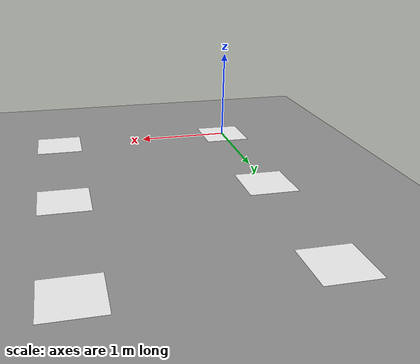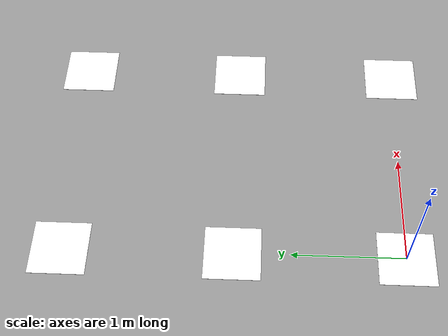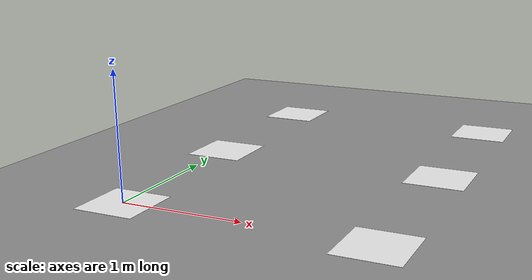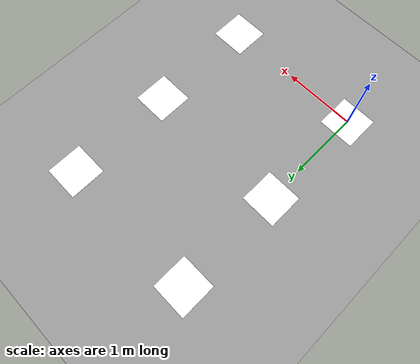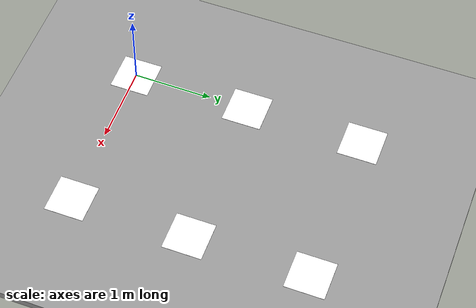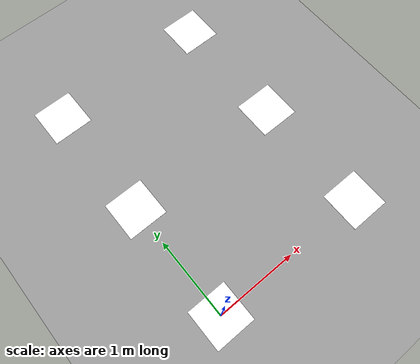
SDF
<?xml version="1.0" encoding="UTF-8"?>
<sdf version="1.9">
  <world name="flow_world">

    <!-- ========== Standard physics ========== -->
    <physics type="ode">
      <max_step_size>0.004</max_step_size>
      <real_time_factor>1.0</real_time_factor>
      <real_time_update_rate>250</real_time_update_rate>
    </physics>
    <gravity>0 0 -9.8</gravity>
    <magnetic_field>6e-06 2.3e-05 -4.2e-05</magnetic_field>
    <spherical_coordinates>
      <surface_model>EARTH_WGS84</surface_model>
      <world_frame_orientation>ENU</world_frame_orientation>
      <latitude_deg>47.397971057728974</latitude_deg>
      <longitude_deg> 8.546163739800146</longitude_deg>
      <elevation>0</elevation>
    </spherical_coordinates>

    <!-- ========== Required Gazebo systems ========== -->
    <plugin filename="gz-sim-physics-system"
            name="gz::sim::systems::Physics"/>
    <plugin filename="gz-sim-user-commands-system"
            name="gz::sim::systems::UserCommands"/>
    <plugin filename="gz-sim-scene-broadcaster-system"
            name="gz::sim::systems::SceneBroadcaster"/>
    <plugin filename="gz-sim-sensors-system"
            name="gz::sim::systems::Sensors">
      <render_engine>ogre2</render_engine>
    </plugin>
    <plugin filename="gz-sim-imu-system"
            name="gz::sim::systems::Imu"/>
    <plugin filename="gz-sim-air-pressure-system"
            name="gz::sim::systems::AirPressure"/>
    <plugin filename="gz-sim-magnetometer-system"
            name="gz::sim::systems::Magnetometer"/>
    <plugin filename="gz-sim-navsat-system"
            name="gz::sim::systems::NavSat"/>
    <plugin filename="OpticalFlowSystem" name="custom::OpticalFlowSystem"/>

    <!-- ========== Lighting ========== -->
    <light type="directional" name="sun">
      <cast_shadows>true</cast_shadows>
      <pose>0 0 10 0 0 0</pose>
      <diffuse>0.8 0.8 0.8 1</diffuse>
      <specular>0.2 0.2 0.2 1</specular>
      <direction>-0.5 0.1 -0.9</direction>
    </light>

    <!-- ========== Textured granite ground ========== -->
    <include>
      <uri>model://granite_ground</uri>
      <pose>0 0 0 0 0 0</pose>
    </include>

    <!-- ========== AprilTags ==========-->
    <include>
        <uri>model://apriltag_tags</uri>
        <pose>0 0 0 0 0 0</pose>
    </include>

  </world>
</sdf>

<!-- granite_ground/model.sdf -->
<sdf version="1.9">
  <model name="granite_ground">
    <static>true</static>
    <link name="link">
      <!-- Top surface sits at z=0; box is 0.1 thick, centred at z=-0.05 -->
      <pose>0 0 -0.05 0 0 0</pose>

      <collision name="collision">
        <geometry>
          <box><size>25 25 0.1</size></box>
        </geometry>
        <surface>
          <friction>
            <ode><mu>1.0</mu><mu2>1.0</mu2></ode>
          </friction>
        </surface>
      </collision>

      <visual name="visual">
        <geometry>
          <box><size>25 25 0.1</size></box>
        </geometry>
        <material>
          <!-- Plain-colour fallback -->
          <ambient>0.5 0.5 0.5 1</ambient>
          <diffuse>0.6 0.6 0.6 1</diffuse>
          <specular>0.1 0.1 0.1 1</specular>
          <!-- PBR albedo map; use the full model:// URI so the find
               callback resolves it regardless of CWD -->
          <pbr>
            <metal>
              <albedo_map>model://granite_ground/materials/textures/granite.png</albedo_map>
              <metalness>0.0</metalness>
              <roughness>0.9</roughness>
            </metal>
          </pbr>
        </material>
      </visual>
    </link>
  </model>
</sdf>

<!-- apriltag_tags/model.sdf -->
<sdf version="1.9">
  <model name="apriltag_tags">
    <static>true</static>
    <pose>0 0 0.02 0 0 0</pose> <!-- Sits on top of the granite ground-->
    <link name="base">

      <!-- First row -->
      <visual name="tag0">
        <pose>0 0 0 0 0 0</pose>
        <geometry><box><size>0.5 0.5 0.002</size></box></geometry>
        <material>
          <diffuse>1 1 1 1</diffuse>
          <pbr><metal>
            <albedo_map>model://apriltag_tags/materials/textures/tag36_11_00000.png</albedo_map>
            <metalness>0.0</metalness><roughness>0.9</roughness>
          </metal></pbr>
        </material>
      </visual>
      <visual name="tag1">
        <pose>0 1.5 0 0 0 0</pose>
        <geometry><box><size>0.5 0.5 0.002</size></box></geometry>
        <material>
          <diffuse>1 1 1 1</diffuse>
          <pbr><metal>
            <albedo_map>model://apriltag_tags/materials/textures/tag36_11_00001.png</albedo_map>
            <metalness>0.0</metalness><roughness>0.9</roughness>
          </metal></pbr>
        </material>
      </visual>
      <visual name="tag2">
        <pose>0 3.0 0 0 0 0</pose>
        <geometry><box><size>0.5 0.5 0.002</size></box></geometry>
        <material>
          <diffuse>1 1 1 1</diffuse>
          <pbr><metal>
            <albedo_map>model://apriltag_tags/materials/textures/tag36_11_00002.png</albedo_map>
            <metalness>0.0</metalness><roughness>0.9</roughness>
          </metal></pbr>
        </material>
      </visual>

      <!-- Second row -->
      <visual name="tag3">
        <pose>2 0 0 0 0 0</pose>
        <geometry><box><size>0.5 0.5 0.002</size></box></geometry>
        <material>
          <diffuse>1 1 1 1</diffuse>
          <pbr><metal>
            <albedo_map>model://apriltag_tags/materials/textures/tag36_11_00003.png</albedo_map>
            <metalness>0.0</metalness><roughness>0.9</roughness>
          </metal></pbr>
        </material>
      </visual>
      <visual name="tag4">
        <pose>2 1.5 0 0 0 0</pose>
        <geometry><box><size>0.5 0.5 0.002</size></box></geometry>
        <material>
          <diffuse>1 1 1 1</diffuse>
          <pbr><metal>
            <albedo_map>model://apriltag_tags/materials/textures/tag36_11_00004.png</albedo_map>
            <metalness>0.0</metalness><roughness>0.9</roughness>
          </metal></pbr>
        </material>
      </visual>
      <visual name="tag5">
        <pose>2 3.0 0 0 0 0</pose>
        <geometry><box><size>0.5 0.5 0.002</size></box></geometry>
        <material>
          <diffuse>1 1 1 1</diffuse>
          <pbr><metal>
            <albedo_map>model://apriltag_tags/materials/textures/tag36_11_00005.png</albedo_map>
            <metalness>0.0</metalness><roughness>0.9</roughness>
          </metal></pbr>
        </material>
      </visual>
    </link>
  </model>
</sdf>
